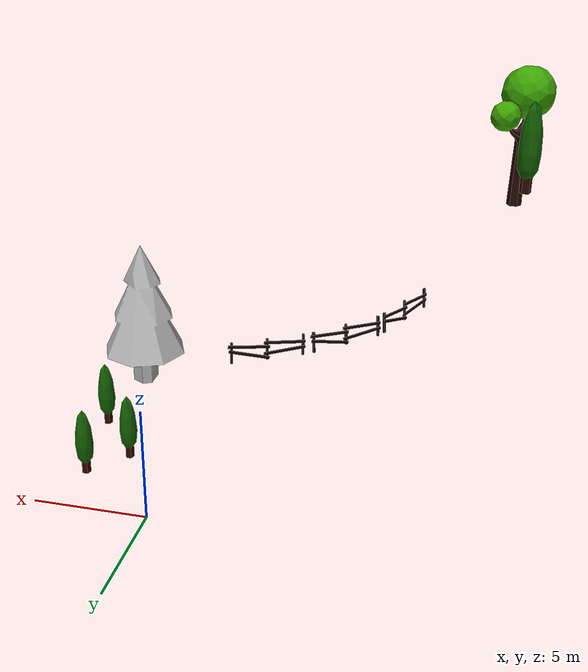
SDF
<sdf version="1.9">
 <world name="test">
  <model name="lowpolytree_1_5_1_3">
   <static>true</static>
   <link name="lowpolytree_1">
    <collision name="lowpolytree_1_collision">
     <geometry>
      <mesh>
       <uri>file:///home/ace-rv/rs1_ros2_ws/install/rs1_environment/share/rs1_environment/models/lowpolytree_1/model://lowpolytree_1/meshes/lowpolytree_1.dae</uri>
      </mesh>
     </geometry>
    </collision>
    <visual name="lowpolytree_1_visual">
     <geometry>
      <mesh>
       <uri>file:///home/ace-rv/rs1_ros2_ws/install/rs1_environment/share/rs1_environment/models/lowpolytree_1/model://lowpolytree_1/meshes/lowpolytree_1.dae</uri>
      </mesh>
     </geometry>
    </visual>
    <inertial>
     <mass>1</mass>
     <inertia><ixx>1</ixx><ixy>0</ixy><ixz>0</ixz><iyy>1</iyy><iyz>0</iyz><izz>1</izz></inertia>
    </inertial>
   </link>
   <pose>3.89018 -11.0353 0.388951 0 -0 0</pose>
  </model>
  <model name="lowpolytree_4_1_1_1">
   <static>true</static>
   <link name="lowpolytree_4">
    <collision name="lowpolytree_4_collision">
     <geometry>
      <mesh>
       <uri>file:///home/ace-rv/rs1_ros2_ws/install/rs1_environment/share/rs1_environment/models/lowpolytree_4/model://lowpolytree_4/meshes/lowpolytree_4.dae</uri>
      </mesh>
     </geometry>
    </collision>
    <visual name="lowpolytree_4_visual">
     <geometry>
      <mesh>
       <uri>file:///home/ace-rv/rs1_ros2_ws/install/rs1_environment/share/rs1_environment/models/lowpolytree_4/model://lowpolytree_4/meshes/lowpolytree_4.dae</uri>
      </mesh>
     </geometry>
    </visual>
    <inertial>
     <mass>1</mass>
     <inertia><ixx>1</ixx><ixy>0</ixy><ixz>0</ixz><iyy>1</iyy><iyz>0</iyz><izz>1</izz></inertia>
    </inertial>
   </link>
   <pose>3.77282 -2.6954 -0.03434 0 -0 0</pose>
  </model>
  <model name="lowpolytree_4_1_1_2">
   <static>true</static>
   <link name="lowpolytree_4">
    <collision name="lowpolytree_4_collision">
     <geometry>
      <mesh>
       <uri>file:///home/ace-rv/rs1_ros2_ws/install/rs1_environment/share/rs1_environment/models/lowpolytree_4/model://lowpolytree_4/meshes/lowpolytree_4.dae</uri>
      </mesh>
     </geometry>
    </collision>
    <visual name="lowpolytree_4_visual">
     <geometry>
      <mesh>
       <uri>file:///home/ace-rv/rs1_ros2_ws/install/rs1_environment/share/rs1_environment/models/lowpolytree_4/model://lowpolytree_4/meshes/lowpolytree_4.dae</uri>
      </mesh>
     </geometry>
    </visual>
    <inertial>
     <mass>1</mass>
     <inertia><ixx>1</ixx><ixy>0</ixy><ixz>0</ixz><iyy>1</iyy><iyz>0</iyz><izz>1</izz></inertia>
    </inertial>
   </link>
   <pose>2.34368 -4.35808 -0.03434 0 -0 0</pose>
  </model>
  <model name="lowpolytree_4_1_1_3">
   <static>true</static>
   <link name="lowpolytree_4">
    <collision name="lowpolytree_4_collision">
     <geometry>
      <mesh>
       <uri>file:///home/ace-rv/rs1_ros2_ws/install/rs1_environment/share/rs1_environment/models/lowpolytree_4/model://lowpolytree_4/meshes/lowpolytree_4.dae</uri>
      </mesh>
     </geometry>
    </collision>
    <visual name="lowpolytree_4_visual">
     <geometry>
      <mesh>
       <uri>file:///home/ace-rv/rs1_ros2_ws/install/rs1_environment/share/rs1_environment/models/lowpolytree_4/model://lowpolytree_4/meshes/lowpolytree_4.dae</uri>
      </mesh>
     </geometry>
    </visual>
    <inertial>
     <mass>1</mass>
     <inertia><ixx>1</ixx><ixy>0</ixy><ixz>0</ixz><iyy>1</iyy><iyz>0</iyz><izz>1</izz></inertia>
    </inertial>
   </link>
   <pose>4.25528 -6.61002 0.218922 0 -0 0</pose>
  </model>
  <model name="lowpolytree_4_1_1_8">
   <static>true</static>
   <link name="lowpolytree_4">
    <collision name="lowpolytree_4_collision">
     <geometry>
      <mesh>
       <uri>file:///home/ace-rv/rs1_ros2_ws/install/rs1_environment/share/rs1_environment/models/lowpolytree_4/model://lowpolytree_4/meshes/lowpolytree_4.dae</uri>
      </mesh>
     </geometry>
    </collision>
    <visual name="lowpolytree_4_visual">
     <geometry>
      <mesh>
       <uri>file:///home/ace-rv/rs1_ros2_ws/install/rs1_environment/share/rs1_environment/models/lowpolytree_4/model://lowpolytree_4/meshes/lowpolytree_4.dae</uri>
      </mesh>
     </geometry>
    </visual>
    <inertial>
     <mass>1</mass>
     <inertia><ixx>1</ixx><ixy>0</ixy><ixz>0</ixz><iyy>1</iyy><iyz>0</iyz><izz>1</izz></inertia>
    </inertial>
   </link>
   <pose>-13.6022 -1.82598 14.3783 0 -0 0</pose>
  </model>
  <model name="lowpolytree_5_1_2">
   <static>true</static>
   <link name="lowpolytree_5">
    <collision name="lowpolytree_5_collision">
     <geometry>
      <mesh>
       <uri>file:///home/ace-rv/rs1_ros2_ws/install/rs1_environment/share/rs1_environment/models/lowpolytree_5/model://lowpolytree_5/meshes/lowpolytree_5.dae</uri>
      </mesh>
     </geometry>
    </collision>
    <visual name="lowpolytree_5_visual">
     <geometry>
      <mesh>
       <uri>file:///home/ace-rv/rs1_ros2_ws/install/rs1_environment/share/rs1_environment/models/lowpolytree_5/model://lowpolytree_5/meshes/lowpolytree_5.dae</uri>
      </mesh>
     </geometry>
    </visual>
    <inertial>
     <mass>1</mass>
     <inertia><ixx>1</ixx><ixy>0</ixy><ixz>0</ixz><iyy>1</iyy><iyz>0</iyz><izz>1</izz></inertia>
    </inertial>
   </link>
   <pose>-13.3017 -3.23672 13.5086 0 0 -0.595097</pose>
  </model>
  <model name="fence_2_3_1">
   <static>true</static>
   <link name="fence_2">
    <collision name="fence_2_collision">
     <geometry>
      <mesh>
       <uri>file:///home/ace-rv/rs1_ros2_ws/install/rs1_environment/share/rs1_environment/models/fence_2/model://fence_2/meshes/fence_2.dae</uri>
      </mesh>
     </geometry>
    </collision>
    <visual name="fence_2_visual">
     <geometry>
      <mesh>
       <uri>file:///home/ace-rv/rs1_ros2_ws/install/rs1_environment/share/rs1_environment/models/fence_2/model://fence_2/meshes/fence_2.dae</uri>
      </mesh>
     </geometry>
    </visual>
    <inertial>
     <mass>1</mass>
     <inertia><ixx>1</ixx><ixy>0</ixy><ixz>0</ixz><iyy>1</iyy><iyz>0</iyz><izz>1</izz></inertia>
    </inertial>
   </link>
   <pose>0.090463 -13.7365 0.346526 -0.004299 -0.010305 -1.05333</pose>
  </model>
  <model name="fence_2_3_1_1">
   <static>true</static>
   <link name="fence_2">
    <collision name="fence_2_collision">
     <geometry>
      <mesh>
       <uri>file:///home/ace-rv/rs1_ros2_ws/install/rs1_environment/share/rs1_environment/models/fence_2/model://fence_2/meshes/fence_2.dae</uri>
      </mesh>
     </geometry>
    </collision>
    <visual name="fence_2_visual">
     <geometry>
      <mesh>
       <uri>file:///home/ace-rv/rs1_ros2_ws/install/rs1_environment/share/rs1_environment/models/fence_2/model://fence_2/meshes/fence_2.dae</uri>
      </mesh>
     </geometry>
    </visual>
    <inertial>
     <mass>1</mass>
     <inertia><ixx>1</ixx><ixy>0</ixy><ixz>0</ixz><iyy>1</iyy><iyz>0</iyz><izz>1</izz></inertia>
    </inertial>
   </link>
   <pose>-3.90308 -16.1462 0.337989 -0.062452 -0.009602 -0.91292</pose>
  </model>
  <model name="fence_2_3_1_1_1">
   <static>true</static>
   <link name="fence_2">
    <collision name="fence_2_collision">
     <geometry>
      <mesh>
       <uri>file:///home/ace-rv/rs1_ros2_ws/install/rs1_environment/share/rs1_environment/models/fence_2/model://fence_2/meshes/fence_2.dae</uri>
      </mesh>
     </geometry>
    </collision>
    <visual name="fence_2_visual">
     <geometry>
      <mesh>
       <uri>file:///home/ace-rv/rs1_ros2_ws/install/rs1_environment/share/rs1_environment/models/fence_2/model://fence_2/meshes/fence_2.dae</uri>
      </mesh>
     </geometry>
    </visual>
    <inertial>
     <mass>1</mass>
     <inertia><ixx>1</ixx><ixy>0</ixy><ixz>0</ixz><iyy>1</iyy><iyz>0</iyz><izz>1</izz></inertia>
    </inertial>
   </link>
   <pose>-7.32943 -19.1534 0.550815 -0.060844 0.017051 -0.48766</pose>
  </model>
 </world>
</sdf>
